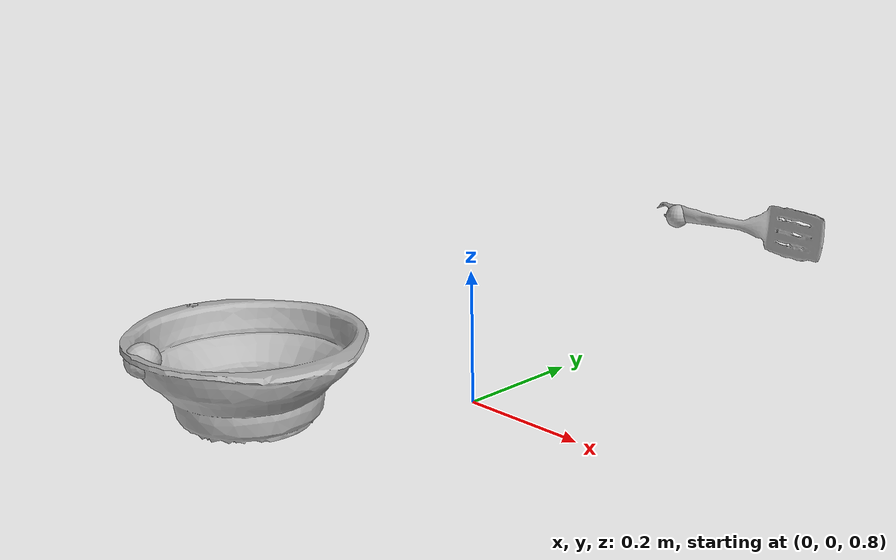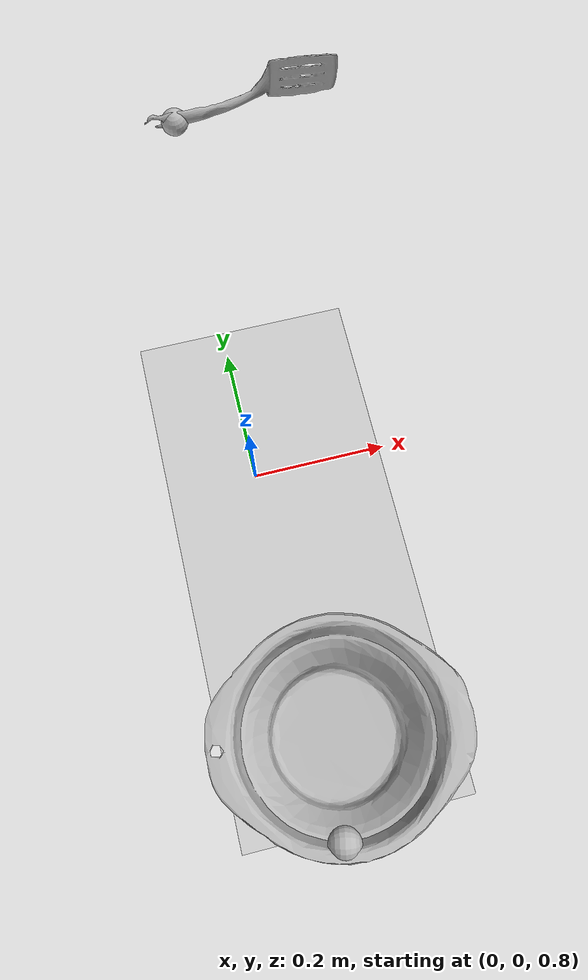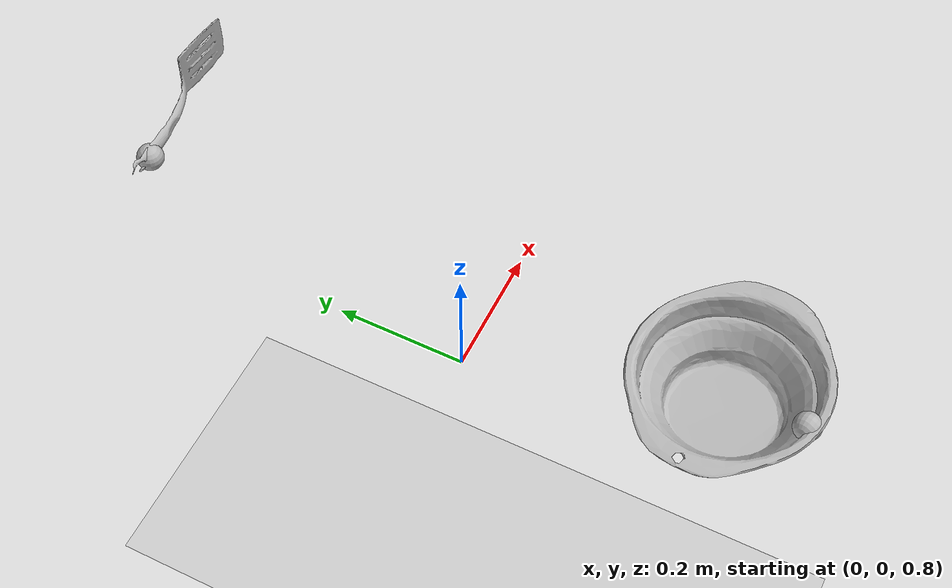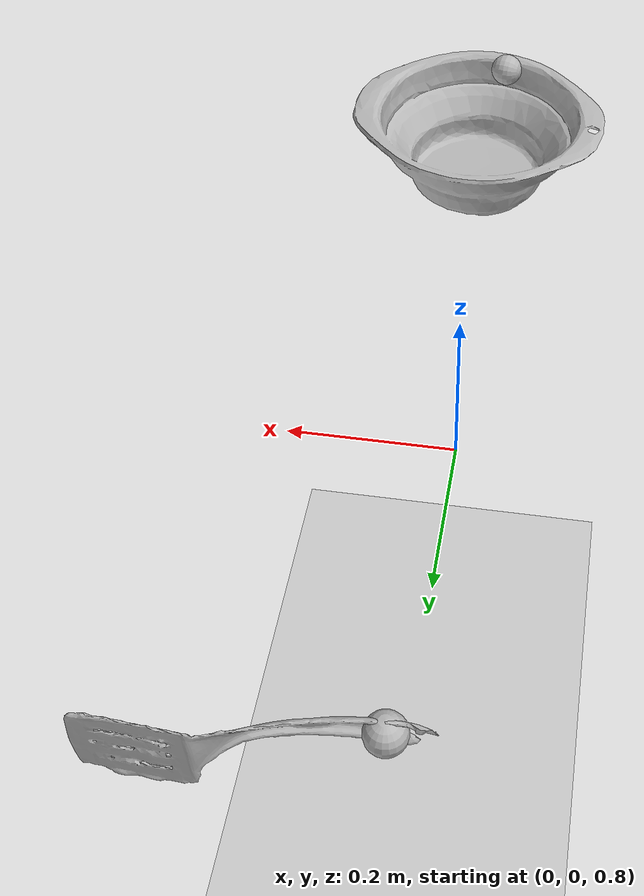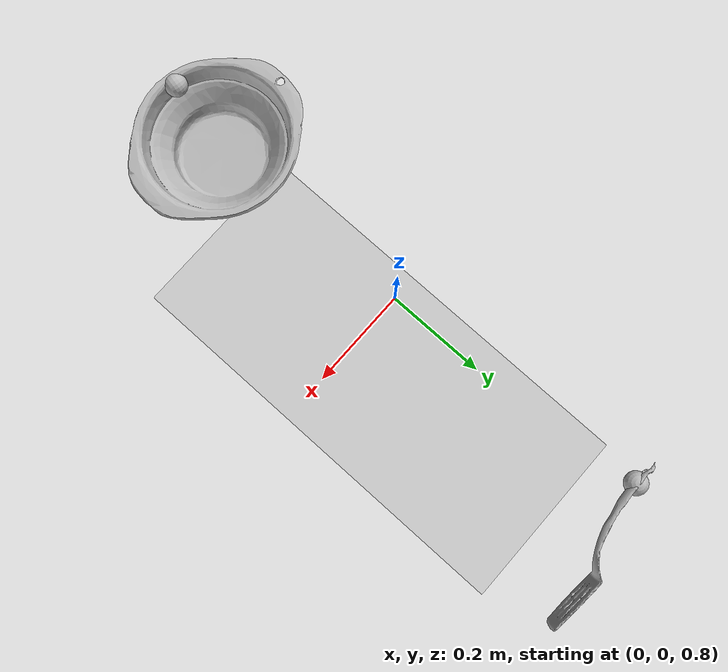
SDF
<sdf version="1.6">
 <world name="big_bowl_spatula_v">
  <include><uri>model://sun</uri></include>
  <include><uri>model://ground_plane</uri></include>
  <include>
   <uri>model://b_spatula</uri>
   <pose>0.140489 0.527566 0.997957 1.571605 -0.058101 -2.939758</pose>
  </include>
  <plugin name="grains_factory" filename="libGrainsFactoryPlugin.so">
   <pose>0.024164 -0.383989 0.959287 0 0 0</pose>
   <mass>0.001</mass>
   <radius>0.015</radius>
   <quantity>100</quantity>
   <friction>0.4</friction>
   <friction2>0.4</friction2>
   <velocity_decay>0.3</velocity_decay>
  </plugin>
  <include>
   <uri>model://b_big_bowl</uri>
   <pose>0.024164 -0.383989 0.959287 -0.017186 -0.000884 -0.101566</pose>
  </include>
  <include>
   <uri>model://gripper</uri>
   <name>left_ee</name>
   <pose>0 0.5 1 0 0 0</pose>
   <plugin name="l_force_controller" filename="libvelocity_controller_plugin.so">
    <linkName>link</linkName>
    <topicName>set_l_ee_twist</topicName>
    <gains>
     <linear><P>0.1</P><I>0.0</I><D>0.02</D></linear>
     <angular><P>0.0001</P><I>0.0</I><D>0.000002</D></angular>
    </gains>
   </plugin>
   <plugin name="l_grip" filename="libGripPlugin.so">
    <parentLinkName>link</parentLinkName>
    <childLinkName>b_spatula::link</childLinkName>
    <relativePose>0.14 0.028 -0.002 -1.57 3.20 0.20</relativePose>
   </plugin>
   <plugin name="l_tf_broadcaster" filename="libtf_broadcaster_plugin.so">
    <linkName>link</linkName>
    <frameName>l_gripper_tool_frame</frameName>
   </plugin>
  </include>
  <include>
   <uri>model://gripper</uri>
   <name>right_ee</name>
   <pose>0 -0.5 1 1.547368 1.402341 1.343703</pose>
   <plugin name="r_force_controller" filename="libvelocity_controller_plugin.so">
    <linkName>link</linkName>
    <topicName>set_r_ee_twist</topicName>
    <gains>
     <linear><P>0.1</P><I>0.0</I><D>0.02</D></linear>
     <angular><P>0.1</P><I>0.0</I><D>0.002</D></angular>
    </gains>
   </plugin>
   <plugin name="r_grip" filename="libGripPlugin.so">
    <parentLinkName>link</parentLinkName>
    <childLinkName>b_big_bowl::link</childLinkName>
    <relativePose>0.06 0.11 0 -1.57 -1.35 1.3</relativePose>
   </plugin>
   <plugin name="r_tf_broadcaster" filename="libtf_broadcaster_plugin.so">
    <linkName>link</linkName>
    <frameName>r_gripper_tool_frame</frameName>
   </plugin>
  </include>
  <plugin name="feature_visualization_plugin" filename="libgiskard_visualization_plugin.so"/>
 </world>
</sdf>

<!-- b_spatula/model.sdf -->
<sdf version='1.6'>
	<model name='b_spatula'>
		<static>false</static>
		<pose>0 0 0 0 0 0</pose>

		<link name='link'>
			<inertial>
			<mass>0.11</mass>
			<pose>0.00088072 -6.5132e-05 0.00086388 0 0 0</pose>
				<inertia>
					<ixx>8.1404e-07</ixx>
					<ixy>0</ixy>
					<ixz>0</ixz>
					<iyy>1.1521e-06</iyy>
					<iyz>0</iyz>
					<izz>5.3661e-07</izz>
				</inertia>
			</inertial>

			<sensor name="tool_contact_sensor" type="contact">
				<always_on>true</always_on>
				<update_rate>30.0</update_rate>
				<contact>
					<collision>collision</collision>
				</contact>
				<plugin name="tool_bumper" filename="libgazebo_ros_bumper.so">
					<bumperTopicName>tool_contact_sensor_state</bumperTopicName>
					<frameName>world</frameName>
				</plugin>
			</sensor>

			<collision name='collision'>
				<geometry>
					<mesh>
						<uri>model://b_spatula/b_spatula.dae</uri>
					</mesh>
				</geometry>
				<surface>
					<friction>
						<ode>
							<mu>0.2</mu>
							<mu2>0.2</mu2>
						</ode>
					</friction>
				</surface>
			</collision>
			<visual name='visual'>
				<geometry>
					<mesh>
						<uri>model://b_spatula/b_spatula.dae</uri>
					</mesh>
				</geometry>
			</visual>
		</link>
	</model>
</sdf>

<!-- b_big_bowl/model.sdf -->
<sdf version='1.6'>
	<model name='b_big_bowl'>
		<static>false</static>
		<pose>0 0 0 0 0 0</pose>

		<link name='link'>
			<inertial>
			<mass>0.35</mass>
			<pose>-0.0022966 -0.0039142 0.0041527 0 0 0</pose>
				<inertia>
					<ixx>0.0009479167</ixx>
					<iyy>0.0009479167</iyy>
					<izz>0.00175</izz>
				</inertia>
			</inertial>
			<collision name='collision'>
				<geometry>
					<mesh>
						<uri>model://b_big_bowl/b_big_bowl.dae</uri>
					</mesh>
				</geometry>
				<surface>
					<friction>
						<ode>
							<mu>0.2</mu>
							<mu2>0.2</mu2>
						</ode>
					</friction>
				</surface>
			</collision>
			<visual name='visual'>
				<geometry>
					<mesh>
						<uri>model://b_big_bowl/b_big_bowl.dae</uri>
					</mesh>
				</geometry>
			</visual>
		</link>
	</model>
</sdf>

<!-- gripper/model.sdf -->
<sdf version='1.6'>
    <model name='gripper'>
        <static>false</static>
        <allow_auto_disable>false</allow_auto_disable>

        <pose>0 0 0 0 0 0</pose>

        <link name='link'>
            <pose>0 0 0 0 0 0</pose>

            <gravity>false</gravity>

            <visual name='visual'>
                <geometry>
                    <sphere>
                        <radius>0.02</radius>
                    </sphere>
                </geometry>
            </visual>

        </link>
    </model>
</sdf>
